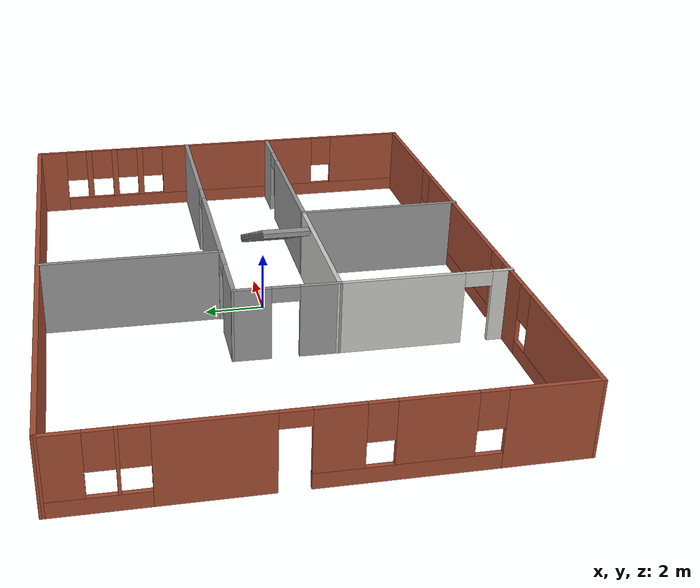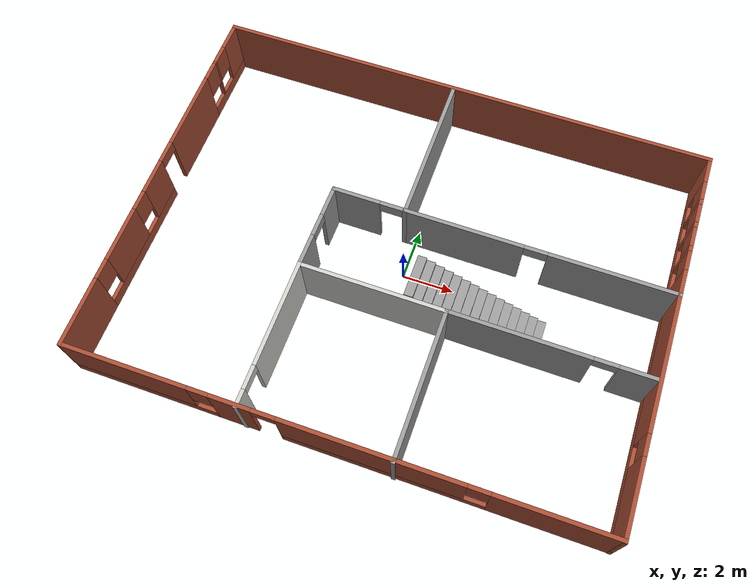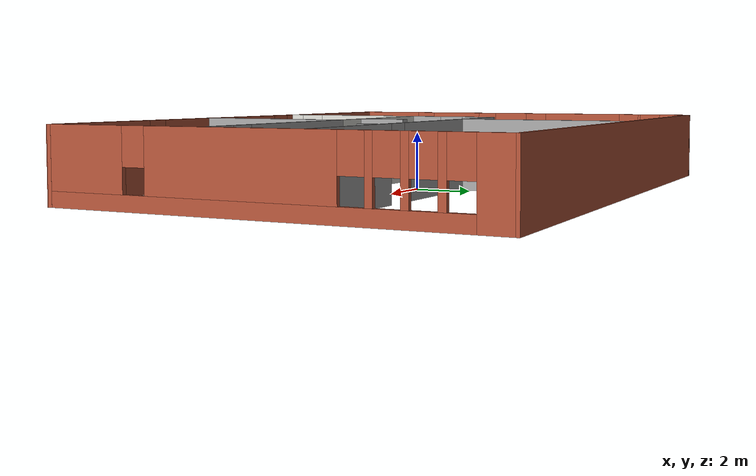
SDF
<?xml version='1.0'?>
<sdf version='1.6'>
  <model name='First_floor'>
    <pose frame=''>-0.06587 0.017672 0 0 -0 0</pose>
    <link name='Stairs_0'>
      <visual name='Stairs_0_Visual_0'>
        <pose frame=''>5.66584 -0.945565 0.083333 0 -0 -1.5708</pose>
        <geometry>
          <box>
            <size>1.64036 0.344635 0.166667</size>
          </box>
        </geometry>
        <material>
          <script>
            <uri>file://media/materials/scripts/gazebo.material</uri>
            <name>Gazebo/Grey</name>
          </script>
          <ambient>1 1 1 1</ambient>
        </material>
        <meta>
          <layer>0</layer>
        </meta>
      </visual>
      <collision name='Stairs_0_Collision_0'>
        <geometry>
          <box>
            <size>1.64036 0.344635 0.166667</size>
          </box>
        </geometry>
        <pose frame=''>5.66584 -0.945565 0.083333 0 -0 -1.5708</pose>
      </collision>
      <visual name='Stairs_0_Visual_1'>
        <pose frame=''>5.32121 -0.945565 0.25 0 -0 -1.5708</pose>
        <geometry>
          <box>
            <size>1.64036 0.344635 0.166667</size>
          </box>
        </geometry>
        <material>
          <script>
            <uri>file://media/materials/scripts/gazebo.material</uri>
            <name>Gazebo/Grey</name>
          </script>
          <ambient>1 1 1 1</ambient>
        </material>
        <meta>
          <layer>0</layer>
        </meta>
      </visual>
      <collision name='Stairs_0_Collision_1'>
        <geometry>
          <box>
            <size>1.64036 0.344635 0.166667</size>
          </box>
        </geometry>
        <pose frame=''>5.32121 -0.945565 0.25 0 -0 -1.5708</pose>
      </collision>
      <visual name='Stairs_0_Visual_2'>
        <pose frame=''>4.97658 -0.945565 0.416667 0 -0 -1.5708</pose>
        <geometry>
          <box>
            <size>1.64036 0.344635 0.166667</size>
          </box>
        </geometry>
        <material>
          <script>
            <uri>file://media/materials/scripts/gazebo.material</uri>
            <name>Gazebo/Grey</name>
          </script>
          <ambient>1 1 1 1</ambient>
        </material>
        <meta>
          <layer>0</layer>
        </meta>
      </visual>
      <collision name='Stairs_0_Collision_2'>
        <geometry>
          <box>
            <size>1.64036 0.344635 0.166667</size>
          </box>
        </geometry>
        <pose frame=''>4.97658 -0.945565 0.416667 0 -0 -1.5708</pose>
      </collision>
      <visual name='Stairs_0_Visual_3'>
        <pose frame=''>4.63194 -0.945565 0.583333 0 -0 -1.5708</pose>
        <geometry>
          <box>
            <size>1.64036 0.344635 0.166667</size>
          </box>
        </geometry>
        <material>
          <script>
            <uri>file://media/materials/scripts/gazebo.material</uri>
            <name>Gazebo/Grey</name>
          </script>
          <ambient>1 1 1 1</ambient>
        </material>
        <meta>
          <layer>0</layer>
        </meta>
      </visual>
      <collision name='Stairs_0_Collision_3'>
        <geometry>
          <box>
            <size>1.64036 0.344635 0.166667</size>
          </box>
        </geometry>
        <pose frame=''>4.63194 -0.945565 0.583333 0 -0 -1.5708</pose>
      </collision>
      <visual name='Stairs_0_Visual_4'>
        <pose frame=''>4.2873 -0.945564 0.75 0 -0 -1.5708</pose>
        <geometry>
          <box>
            <size>1.64036 0.344635 0.166667</size>
          </box>
        </geometry>
        <material>
          <script>
            <uri>file://media/materials/scripts/gazebo.material</uri>
            <name>Gazebo/Grey</name>
          </script>
          <ambient>1 1 1 1</ambient>
        </material>
        <meta>
          <layer>0</layer>
        </meta>
      </visual>
      <collision name='Stairs_0_Collision_4'>
        <geometry>
          <box>
            <size>1.64036 0.344635 0.166667</size>
          </box>
        </geometry>
        <pose frame=''>4.2873 -0.945564 0.75 0 -0 -1.5708</pose>
      </collision>
      <visual name='Stairs_0_Visual_5'>
        <pose frame=''>3.94267 -0.945564 0.916667 0 -0 -1.5708</pose>
        <geometry>
          <box>
            <size>1.64036 0.344635 0.166667</size>
          </box>
        </geometry>
        <material>
          <script>
            <uri>file://media/materials/scripts/gazebo.material</uri>
            <name>Gazebo/Grey</name>
          </script>
          <ambient>1 1 1 1</ambient>
        </material>
        <meta>
          <layer>0</layer>
        </meta>
      </visual>
      <collision name='Stairs_0_Collision_5'>
        <geometry>
          <box>
            <size>1.64036 0.344635 0.166667</size>
          </box>
        </geometry>
        <pose frame=''>3.94267 -0.945564 0.916667 0 -0 -1.5708</pose>
      </collision>
      <visual name='Stairs_0_Visual_6'>
        <pose frame=''>3.59804 -0.945564 1.08333 0 -0 -1.5708</pose>
        <geometry>
          <box>
            <size>1.64036 0.344635 0.166667</size>
          </box>
        </geometry>
        <material>
          <script>
            <uri>file://media/materials/scripts/gazebo.material</uri>
            <name>Gazebo/Grey</name>
          </script>
          <ambient>1 1 1 1</ambient>
        </material>
        <meta>
          <layer>0</layer>
        </meta>
      </visual>
      <collision name='Stairs_0_Collision_6'>
        <geometry>
          <box>
            <size>1.64036 0.344635 0.166667</size>
          </box>
        </geometry>
        <pose frame=''>3.59804 -0.945564 1.08333 0 -0 -1.5708</pose>
      </collision>
      <visual name='Stairs_0_Visual_7'>
        <pose frame=''>3.2534 -0.945564 1.25 0 -0 -1.5708</pose>
        <geometry>
          <box>
            <size>1.64036 0.344635 0.166667</size>
          </box>
        </geometry>
        <material>
          <script>
            <uri>file://media/materials/scripts/gazebo.material</uri>
            <name>Gazebo/Grey</name>
          </script>
          <ambient>1 1 1 1</ambient>
        </material>
        <meta>
          <layer>0</layer>
        </meta>
      </visual>
      <collision name='Stairs_0_Collision_7'>
        <geometry>
          <box>
            <size>1.64036 0.344635 0.166667</size>
          </box>
        </geometry>
        <pose frame=''>3.2534 -0.945564 1.25 0 -0 -1.5708</pose>
      </collision>
      <visual name='Stairs_0_Visual_8'>
        <pose frame=''>2.90877 -0.945564 1.41667 0 -0 -1.5708</pose>
        <geometry>
          <box>
            <size>1.64036 0.344635 0.166667</size>
          </box>
        </geometry>
        <material>
          <script>
            <uri>file://media/materials/scripts/gazebo.material</uri>
            <name>Gazebo/Grey</name>
          </script>
          <ambient>1 1 1 1</ambient>
        </material>
        <meta>
          <layer>0</layer>
        </meta>
      </visual>
      <collision name='Stairs_0_Collision_8'>
        <geometry>
          <box>
            <size>1.64036 0.344635 0.166667</size>
          </box>
        </geometry>
        <pose frame=''>2.90877 -0.945564 1.41667 0 -0 -1.5708</pose>
      </collision>
      <visual name='Stairs_0_Visual_9'>
        <pose frame=''>2.56413 -0.945564 1.58333 0 -0 -1.5708</pose>
        <geometry>
          <box>
            <size>1.64036 0.344635 0.166667</size>
          </box>
        </geometry>
        <material>
          <script>
            <uri>file://media/materials/scripts/gazebo.material</uri>
            <name>Gazebo/Grey</name>
          </script>
          <ambient>1 1 1 1</ambient>
        </material>
        <meta>
          <layer>0</layer>
        </meta>
      </visual>
      <collision name='Stairs_0_Collision_9'>
        <geometry>
          <box>
            <size>1.64036 0.344635 0.166667</size>
          </box>
        </geometry>
        <pose frame=''>2.56413 -0.945564 1.58333 0 -0 -1.5708</pose>
      </collision>
      <visual name='Stairs_0_Visual_10'>
        <pose frame=''>2.2195 -0.945564 1.75 0 -0 -1.5708</pose>
        <geometry>
          <box>
            <size>1.64036 0.344635 0.166667</size>
          </box>
        </geometry>
        <material>
          <script>
            <uri>file://media/materials/scripts/gazebo.material</uri>
            <name>Gazebo/Grey</name>
          </script>
          <ambient>1 1 1 1</ambient>
        </material>
        <meta>
          <layer>0</layer>
        </meta>
      </visual>
      <collision name='Stairs_0_Collision_10'>
        <geometry>
          <box>
            <size>1.64036 0.344635 0.166667</size>
          </box>
        </geometry>
        <pose frame=''>2.2195 -0.945564 1.75 0 -0 -1.5708</pose>
      </collision>
      <visual name='Stairs_0_Visual_11'>
        <pose frame=''>1.87486 -0.945564 1.91667 0 -0 -1.5708</pose>
        <geometry>
          <box>
            <size>1.64036 0.344635 0.166667</size>
          </box>
        </geometry>
        <material>
          <script>
            <uri>file://media/materials/scripts/gazebo.material</uri>
            <name>Gazebo/Grey</name>
          </script>
          <ambient>1 1 1 1</ambient>
        </material>
        <meta>
          <layer>0</layer>
        </meta>
      </visual>
      <collision name='Stairs_0_Collision_11'>
        <geometry>
          <box>
            <size>1.64036 0.344635 0.166667</size>
          </box>
        </geometry>
        <pose frame=''>1.87486 -0.945564 1.91667 0 -0 -1.5708</pose>
      </collision>
      <visual name='Stairs_0_Visual_12'>
        <pose frame=''>1.53023 -0.945564 2.08333 0 -0 -1.5708</pose>
        <geometry>
          <box>
            <size>1.64036 0.344635 0.166667</size>
          </box>
        </geometry>
        <material>
          <script>
            <uri>file://media/materials/scripts/gazebo.material</uri>
            <name>Gazebo/Grey</name>
          </script>
          <ambient>1 1 1 1</ambient>
        </material>
        <meta>
          <layer>0</layer>
        </meta>
      </visual>
      <collision name='Stairs_0_Collision_12'>
        <geometry>
          <box>
            <size>1.64036 0.344635 0.166667</size>
          </box>
        </geometry>
        <pose frame=''>1.53023 -0.945564 2.08333 0 -0 -1.5708</pose>
      </collision>
      <visual name='Stairs_0_Visual_13'>
        <pose frame=''>1.18559 -0.945564 2.25 0 -0 -1.5708</pose>
        <geometry>
          <box>
            <size>1.64036 0.344635 0.166667</size>
          </box>
        </geometry>
        <material>
          <script>
            <uri>file://media/materials/scripts/gazebo.material</uri>
            <name>Gazebo/Grey</name>
          </script>
          <ambient>1 1 1 1</ambient>
        </material>
        <meta>
          <layer>0</layer>
        </meta>
      </visual>
      <collision name='Stairs_0_Collision_13'>
        <geometry>
          <box>
            <size>1.64036 0.344635 0.166667</size>
          </box>
        </geometry>
        <pose frame=''>1.18559 -0.945564 2.25 0 -0 -1.5708</pose>
      </collision>
      <visual name='Stairs_0_Visual_14'>
        <pose frame=''>0.840959 -0.945564 2.41667 0 -0 -1.5708</pose>
        <geometry>
          <box>
            <size>1.64036 0.344635 0.166667</size>
          </box>
        </geometry>
        <material>
          <script>
            <uri>file://media/materials/scripts/gazebo.material</uri>
            <name>Gazebo/Grey</name>
          </script>
          <ambient>1 1 1 1</ambient>
        </material>
        <meta>
          <layer>0</layer>
        </meta>
      </visual>
      <collision name='Stairs_0_Collision_14'>
        <geometry>
          <box>
            <size>1.64036 0.344635 0.166667</size>
          </box>
        </geometry>
        <pose frame=''>0.840959 -0.945564 2.41667 0 -0 -1.5708</pose>
      </collision>
    </link>
    <link name='Wall_0'>
      <collision name='Wall_0_Collision'>
        <geometry>
          <box>
            <size>20.0866 0.15 2.5</size>
          </box>
        </geometry>
        <pose frame=''>0 0 1.25 0 -0 0</pose>
      </collision>
      <visual name='Wall_0_Visual'>
        <pose frame=''>0 0 1.25 0 -0 0</pose>
        <geometry>
          <box>
            <size>20.0866 0.15 2.5</size>
          </box>
        </geometry>
        <material>
          <script>
            <uri>file://media/materials/scripts/gazebo.material</uri>
            <name>Gazebo/Bricks</name>
          </script>
          <ambient>1 1 1 1</ambient>
        </material>
        <meta>
          <layer>0</layer>
        </meta>
      </visual>
      <pose frame=''>-0.034458 7.43331 0 0 -0 0.003011</pose>
    </link>
    <link name='Wall_1'>
      <pose frame=''>9.96823 0.021047 0 0 0 -1.56616</pose>
      <visual name='Wall_1_Visual_0'>
        <pose frame=''>-6.94799 0 1.25 0 -0 0</pose>
        <geometry>
          <box>
            <size>1.10416 0.15 2.5</size>
          </box>
        </geometry>
        <material>
          <script>
            <uri>file://media/materials/scripts/gazebo.material</uri>
            <name>Gazebo/Bricks</name>
          </script>
          <ambient>1 1 1 1</ambient>
        </material>
        <meta>
          <layer>0</layer>
        </meta>
      </visual>
      <collision name='Wall_1_Collision_0'>
        <geometry>
          <box>
            <size>1.10416 0.15 2.5</size>
          </box>
        </geometry>
        <pose frame=''>-6.94799 0 1.25 0 -0 0</pose>
      </collision>
      <visual name='Wall_1_Visual_1'>
        <pose frame=''>0.55208 0 0.25 0 -0 0</pose>
        <geometry>
          <box>
            <size>13.896 0.15 0.5</size>
          </box>
        </geometry>
        <material>
          <script>
            <uri>file://media/materials/scripts/gazebo.material</uri>
            <name>Gazebo/Bricks</name>
          </script>
          <ambient>1 1 1 1</ambient>
        </material>
        <meta>
          <layer>0</layer>
        </meta>
      </visual>
      <collision name='Wall_1_Collision_1'>
        <geometry>
          <box>
            <size>13.896 0.15 0.5</size>
          </box>
        </geometry>
        <pose frame=''>0.55208 0 0.25 0 -0 0</pose>
      </collision>
      <visual name='Wall_1_Visual_2'>
        <pose frame=''>-5.47984 0 1.5 0 -0 0</pose>
        <geometry>
          <box>
            <size>0.232133 0.15 2</size>
          </box>
        </geometry>
        <material>
          <script>
            <uri>file://media/materials/scripts/gazebo.material</uri>
            <name>Gazebo/Bricks</name>
          </script>
          <ambient>1 1 1 1</ambient>
        </material>
        <meta>
          <layer>0</layer>
        </meta>
      </visual>
      <collision name='Wall_1_Collision_2'>
        <geometry>
          <box>
            <size>0.232133 0.15 2</size>
          </box>
        </geometry>
        <pose frame=''>-5.47984 0 1.5 0 -0 0</pose>
      </collision>
      <visual name='Wall_1_Visual_3'>
        <pose frame=''>-4.44797 0 1.5 0 -0 0</pose>
        <geometry>
          <box>
            <size>0.231613 0.15 2</size>
          </box>
        </geometry>
        <material>
          <script>
            <uri>file://media/materials/scripts/gazebo.material</uri>
            <name>Gazebo/Bricks</name>
          </script>
          <ambient>1 1 1 1</ambient>
        </material>
        <meta>
          <layer>0</layer>
        </meta>
      </visual>
      <collision name='Wall_1_Collision_3'>
        <geometry>
          <box>
            <size>0.231613 0.15 2</size>
          </box>
        </geometry>
        <pose frame=''>-4.44797 0 1.5 0 -0 0</pose>
      </collision>
      <visual name='Wall_1_Visual_4'>
        <pose frame=''>-3.4163 0 1.5 0 -0 0</pose>
        <geometry>
          <box>
            <size>0.231716 0.15 2</size>
          </box>
        </geometry>
        <material>
          <script>
            <uri>file://media/materials/scripts/gazebo.material</uri>
            <name>Gazebo/Bricks</name>
          </script>
          <ambient>1 1 1 1</ambient>
        </material>
        <meta>
          <layer>0</layer>
        </meta>
      </visual>
      <collision name='Wall_1_Collision_4'>
        <geometry>
          <box>
            <size>0.231716 0.15 2</size>
          </box>
        </geometry>
        <pose frame=''>-3.4163 0 1.5 0 -0 0</pose>
      </collision>
      <visual name='Wall_1_Visual_5'>
        <pose frame=''>0.654855 0 1.5 0 -0 0</pose>
        <geometry>
          <box>
            <size>6.3106 0.15 2</size>
          </box>
        </geometry>
        <material>
          <script>
            <uri>file://media/materials/scripts/gazebo.material</uri>
            <name>Gazebo/Bricks</name>
          </script>
          <ambient>1 1 1 1</ambient>
        </material>
        <meta>
          <layer>0</layer>
        </meta>
      </visual>
      <collision name='Wall_1_Collision_5'>
        <geometry>
          <box>
            <size>6.3106 0.15 2</size>
          </box>
        </geometry>
        <pose frame=''>0.654855 0 1.5 0 -0 0</pose>
      </collision>
      <visual name='Wall_1_Visual_6'>
        <pose frame=''>6.05511 0 1.5 0 -0 0</pose>
        <geometry>
          <box>
            <size>2.88991 0.15 2</size>
          </box>
        </geometry>
        <material>
          <script>
            <uri>file://media/materials/scripts/gazebo.material</uri>
            <name>Gazebo/Bricks</name>
          </script>
          <ambient>1 1 1 1</ambient>
        </material>
        <meta>
          <layer>0</layer>
        </meta>
      </visual>
      <collision name='Wall_1_Collision_6'>
        <geometry>
          <box>
            <size>2.88991 0.15 2</size>
          </box>
        </geometry>
        <pose frame=''>6.05511 0 1.5 0 -0 0</pose>
      </collision>
      <visual name='Wall_1_Visual_7'>
        <pose frame=''>-5.99591 0 1.9 0 -0 0</pose>
        <geometry>
          <box>
            <size>0.8 0.15 1.2</size>
          </box>
        </geometry>
        <material>
          <script>
            <uri>file://media/materials/scripts/gazebo.material</uri>
            <name>Gazebo/Bricks</name>
          </script>
          <ambient>1 1 1 1</ambient>
        </material>
        <meta>
          <layer>0</layer>
        </meta>
      </visual>
      <collision name='Wall_1_Collision_7'>
        <geometry>
          <box>
            <size>0.8 0.15 1.2</size>
          </box>
        </geometry>
        <pose frame=''>-5.99591 0 1.9 0 -0 0</pose>
      </collision>
      <visual name='Wall_1_Visual_8'>
        <pose frame=''>-4.96377 0 1.9 0 -0 0</pose>
        <geometry>
          <box>
            <size>0.8 0.15 1.2</size>
          </box>
        </geometry>
        <material>
          <script>
            <uri>file://media/materials/scripts/gazebo.material</uri>
            <name>Gazebo/Bricks</name>
          </script>
          <ambient>1 1 1 1</ambient>
        </material>
        <meta>
          <layer>0</layer>
        </meta>
      </visual>
      <collision name='Wall_1_Collision_8'>
        <geometry>
          <box>
            <size>0.8 0.15 1.2</size>
          </box>
        </geometry>
        <pose frame=''>-4.96377 0 1.9 0 -0 0</pose>
      </collision>
      <visual name='Wall_1_Visual_9'>
        <pose frame=''>-3.93216 0 1.9 0 -0 0</pose>
        <geometry>
          <box>
            <size>0.8 0.15 1.2</size>
          </box>
        </geometry>
        <material>
          <script>
            <uri>file://media/materials/scripts/gazebo.material</uri>
            <name>Gazebo/Bricks</name>
          </script>
          <ambient>1 1 1 1</ambient>
        </material>
        <meta>
          <layer>0</layer>
        </meta>
      </visual>
      <collision name='Wall_1_Collision_9'>
        <geometry>
          <box>
            <size>0.8 0.15 1.2</size>
          </box>
        </geometry>
        <pose frame=''>-3.93216 0 1.9 0 -0 0</pose>
      </collision>
      <visual name='Wall_1_Visual_10'>
        <pose frame=''>-2.90044 0 1.9 0 -0 0</pose>
        <geometry>
          <box>
            <size>0.8 0.15 1.2</size>
          </box>
        </geometry>
        <material>
          <script>
            <uri>file://media/materials/scripts/gazebo.material</uri>
            <name>Gazebo/Bricks</name>
          </script>
          <ambient>1 1 1 1</ambient>
        </material>
        <meta>
          <layer>0</layer>
        </meta>
      </visual>
      <collision name='Wall_1_Collision_10'>
        <geometry>
          <box>
            <size>0.8 0.15 1.2</size>
          </box>
        </geometry>
        <pose frame=''>-2.90044 0 1.9 0 -0 0</pose>
      </collision>
      <visual name='Wall_1_Visual_11'>
        <pose frame=''>4.21016 0 1.9 0 -0 0</pose>
        <geometry>
          <box>
            <size>0.8 0.15 1.2</size>
          </box>
        </geometry>
        <material>
          <script>
            <uri>file://media/materials/scripts/gazebo.material</uri>
            <name>Gazebo/Bricks</name>
          </script>
          <ambient>1 1 1 1</ambient>
        </material>
        <meta>
          <layer>0</layer>
        </meta>
      </visual>
      <collision name='Wall_1_Collision_11'>
        <geometry>
          <box>
            <size>0.8 0.15 1.2</size>
          </box>
        </geometry>
        <pose frame=''>4.21016 0 1.9 0 -0 0</pose>
      </collision>
    </link>
    <link name='Wall_11'>
      <collision name='Wall_11_Collision'>
        <geometry>
          <box>
            <size>6 0.15 2.5</size>
          </box>
        </geometry>
        <pose frame=''>0 0 1.25 0 -0 0</pose>
      </collision>
      <visual name='Wall_11_Visual'>
        <pose frame=''>0 0 1.25 0 -0 0</pose>
        <geometry>
          <box>
            <size>6 0.15 2.5</size>
          </box>
        </geometry>
        <material>
          <script>
            <uri>file://media/materials/scripts/gazebo.material</uri>
            <name>Gazebo/Grey</name>
          </script>
          <ambient>1 1 1 1</ambient>
        </material>
        <meta>
          <layer>0</layer>
        </meta>
      </visual>
      <pose frame=''>-0.394257 4.40838 0 0 0 -1.57075</pose>
    </link>
    <link name='Wall_12'>
      <pose frame=''>4.78074 1.48338 0 0 -0 9e-06</pose>
      <visual name='Wall_12_Visual_0'>
        <pose frame=''>-2.91164 0 1.25 0 -0 0</pose>
        <geometry>
          <box>
            <size>4.67672 0.15 2.5</size>
          </box>
        </geometry>
        <material>
          <script>
            <uri>file://media/materials/scripts/gazebo.material</uri>
            <name>Gazebo/Grey</name>
          </script>
          <ambient>1 1 1 1</ambient>
        </material>
        <meta>
          <layer>0</layer>
        </meta>
      </visual>
      <collision name='Wall_12_Collision_0'>
        <geometry>
          <box>
            <size>4.67672 0.15 2.5</size>
          </box>
        </geometry>
        <pose frame=''>-2.91164 0 1.25 0 -0 0</pose>
      </collision>
      <visual name='Wall_12_Visual_1'>
        <pose frame=''>2.78836 0 1.25 0 -0 0</pose>
        <geometry>
          <box>
            <size>4.92328 0.15 2.5</size>
          </box>
        </geometry>
        <material>
          <script>
            <uri>file://media/materials/scripts/gazebo.material</uri>
            <name>Gazebo/Grey</name>
          </script>
          <ambient>1 1 1 1</ambient>
        </material>
        <meta>
          <layer>0</layer>
        </meta>
      </visual>
      <collision name='Wall_12_Collision_1'>
        <geometry>
          <box>
            <size>4.92328 0.15 2.5</size>
          </box>
        </geometry>
        <pose frame=''>2.78836 0 1.25 0 -0 0</pose>
      </collision>
      <visual name='Wall_12_Visual_2'>
        <pose frame=''>-0.123283 0 2.25 0 -0 0</pose>
        <geometry>
          <box>
            <size>0.9 0.15 0.5</size>
          </box>
        </geometry>
        <material>
          <script>
            <uri>file://media/materials/scripts/gazebo.material</uri>
            <name>Gazebo/Grey</name>
          </script>
          <ambient>1 1 1 1</ambient>
        </material>
        <meta>
          <layer>0</layer>
        </meta>
      </visual>
      <collision name='Wall_12_Collision_2'>
        <geometry>
          <box>
            <size>0.9 0.15 0.5</size>
          </box>
        </geometry>
        <pose frame=''>-0.123283 0 2.25 0 -0 0</pose>
      </collision>
    </link>
    <link name='Wall_14'>
      <pose frame=''>-1.81913 1.48333 0 0 -0 3.14159</pose>
      <visual name='Wall_14_Visual_0'>
        <pose frame=''>-1.41529 0 1.25 0 -0 0</pose>
        <geometry>
          <box>
            <size>0.16941 0.15 2.5</size>
          </box>
        </geometry>
        <material>
          <script>
            <uri>file://media/materials/scripts/gazebo.material</uri>
            <name>Gazebo/Grey</name>
          </script>
          <ambient>1 1 1 1</ambient>
        </material>
        <meta>
          <layer>0</layer>
        </meta>
      </visual>
      <collision name='Wall_14_Collision_0'>
        <geometry>
          <box>
            <size>0.16941 0.15 2.5</size>
          </box>
        </geometry>
        <pose frame=''>-1.41529 0 1.25 0 -0 0</pose>
      </collision>
      <visual name='Wall_14_Visual_1'>
        <pose frame=''>0.534705 0 1.25 0 -0 0</pose>
        <geometry>
          <box>
            <size>1.93059 0.15 2.5</size>
          </box>
        </geometry>
        <material>
          <script>
            <uri>file://media/materials/scripts/gazebo.material</uri>
            <name>Gazebo/Grey</name>
          </script>
          <ambient>1 1 1 1</ambient>
        </material>
        <meta>
          <layer>0</layer>
        </meta>
      </visual>
      <collision name='Wall_14_Collision_1'>
        <geometry>
          <box>
            <size>1.93059 0.15 2.5</size>
          </box>
        </geometry>
        <pose frame=''>0.534705 0 1.25 0 -0 0</pose>
      </collision>
      <visual name='Wall_14_Visual_2'>
        <pose frame=''>-0.88059 0 2.25 0 -0 0</pose>
        <geometry>
          <box>
            <size>0.9 0.15 0.5</size>
          </box>
        </geometry>
        <material>
          <script>
            <uri>file://media/materials/scripts/gazebo.material</uri>
            <name>Gazebo/Grey</name>
          </script>
          <ambient>1 1 1 1</ambient>
        </material>
        <meta>
          <layer>0</layer>
        </meta>
      </visual>
      <collision name='Wall_14_Collision_2'>
        <geometry>
          <box>
            <size>0.9 0.15 0.5</size>
          </box>
        </geometry>
        <pose frame=''>-0.88059 0 2.25 0 -0 0</pose>
      </collision>
    </link>
    <link name='Wall_15'>
      <pose frame=''>-3.26556 -0.190112 0 0 0 -1.5836</pose>
      <visual name='Wall_15_Visual_0'>
        <pose frame=''>-1.11592 0 1.25 0 -0 0</pose>
        <geometry>
          <box>
            <size>1.26541 0.15 2.5</size>
          </box>
        </geometry>
        <material>
          <script>
            <uri>file://media/materials/scripts/gazebo.material</uri>
            <name>Gazebo/Grey</name>
          </script>
          <ambient>1 1 1 1</ambient>
        </material>
        <meta>
          <layer>0</layer>
        </meta>
      </visual>
      <collision name='Wall_15_Collision_0'>
        <geometry>
          <box>
            <size>1.26541 0.15 2.5</size>
          </box>
        </geometry>
        <pose frame=''>-1.11592 0 1.25 0 -0 0</pose>
      </collision>
      <visual name='Wall_15_Visual_1'>
        <pose frame=''>1.0827 0 1.25 0 -0 0</pose>
        <geometry>
          <box>
            <size>1.33184 0.15 2.5</size>
          </box>
        </geometry>
        <material>
          <script>
            <uri>file://media/materials/scripts/gazebo.material</uri>
            <name>Gazebo/Grey</name>
          </script>
          <ambient>1 1 1 1</ambient>
        </material>
        <meta>
          <layer>0</layer>
        </meta>
      </visual>
      <collision name='Wall_15_Collision_1'>
        <geometry>
          <box>
            <size>1.33184 0.15 2.5</size>
          </box>
        </geometry>
        <pose frame=''>1.0827 0 1.25 0 -0 0</pose>
      </collision>
      <visual name='Wall_15_Visual_2'>
        <pose frame=''>-0.033215 0 2.25 0 -0 0</pose>
        <geometry>
          <box>
            <size>0.9 0.15 0.5</size>
          </box>
        </geometry>
        <material>
          <script>
            <uri>file://media/materials/scripts/gazebo.material</uri>
            <name>Gazebo/Grey</name>
          </script>
          <ambient>1 1 1 1</ambient>
        </material>
        <meta>
          <layer>0</layer>
        </meta>
      </visual>
      <collision name='Wall_15_Collision_2'>
        <geometry>
          <box>
            <size>0.9 0.15 0.5</size>
          </box>
        </geometry>
        <pose frame=''>-0.033215 0 2.25 0 -0 0</pose>
      </collision>
    </link>
    <link name='Wall_2'>
      <pose frame=''>0.034457 -7.41666 0 0 0 -3.13858</pose>
      <visual name='Wall_2_Visual_0'>
        <pose frame=''>-7.81814 0 1.25 0 -0 0</pose>
        <geometry>
          <box>
            <size>4.45027 0.15 2.5</size>
          </box>
        </geometry>
        <material>
          <script>
            <uri>file://media/materials/scripts/gazebo.material</uri>
            <name>Gazebo/Bricks</name>
          </script>
          <ambient>1 1 1 1</ambient>
        </material>
        <meta>
          <layer>0</layer>
        </meta>
      </visual>
      <collision name='Wall_2_Collision_0'>
        <geometry>
          <box>
            <size>4.45027 0.15 2.5</size>
          </box>
        </geometry>
        <pose frame=''>-7.81814 0 1.25 0 -0 0</pose>
      </collision>
      <visual name='Wall_2_Visual_1'>
        <pose frame=''>3.59029 0 1.25 0 -0 0</pose>
        <geometry>
          <box>
            <size>1.54988 0.15 2.5</size>
          </box>
        </geometry>
        <material>
          <script>
            <uri>file://media/materials/scripts/gazebo.material</uri>
            <name>Gazebo/Bricks</name>
          </script>
          <ambient>1 1 1 1</ambient>
        </material>
        <meta>
          <layer>0</layer>
        </meta>
      </visual>
      <collision name='Wall_2_Collision_1'>
        <geometry>
          <box>
            <size>1.54988 0.15 2.5</size>
          </box>
        </geometry>
        <pose frame=''>3.59029 0 1.25 0 -0 0</pose>
      </collision>
      <visual name='Wall_2_Visual_2'>
        <pose frame=''>-1.83883 0 0.25 0 -0 0</pose>
        <geometry>
          <box>
            <size>7.50836 0.15 0.5</size>
          </box>
        </geometry>
        <material>
          <script>
            <uri>file://media/materials/scripts/gazebo.material</uri>
            <name>Gazebo/Bricks</name>
          </script>
          <ambient>1 1 1 1</ambient>
        </material>
        <meta>
          <layer>0</layer>
        </meta>
      </visual>
      <collision name='Wall_2_Collision_2'>
        <geometry>
          <box>
            <size>7.50836 0.15 0.5</size>
          </box>
        </geometry>
        <pose frame=''>-1.83883 0 0.25 0 -0 0</pose>
      </collision>
      <visual name='Wall_2_Visual_3'>
        <pose frame=''>7.20425 0 0.25 0 -0 0</pose>
        <geometry>
          <box>
            <size>5.67805 0.15 0.5</size>
          </box>
        </geometry>
        <material>
          <script>
            <uri>file://media/materials/scripts/gazebo.material</uri>
            <name>Gazebo/Bricks</name>
          </script>
          <ambient>1 1 1 1</ambient>
        </material>
        <meta>
          <layer>0</layer>
        </meta>
      </visual>
      <collision name='Wall_2_Collision_3'>
        <geometry>
          <box>
            <size>5.67805 0.15 0.5</size>
          </box>
        </geometry>
        <pose frame=''>7.20425 0 0.25 0 -0 0</pose>
      </collision>
      <visual name='Wall_2_Visual_4'>
        <pose frame=''>-1.43883 0 1.5 0 -0 0</pose>
        <geometry>
          <box>
            <size>6.70836 0.15 2</size>
          </box>
        </geometry>
        <material>
          <script>
            <uri>file://media/materials/scripts/gazebo.material</uri>
            <name>Gazebo/Bricks</name>
          </script>
          <ambient>1 1 1 1</ambient>
        </material>
        <meta>
          <layer>0</layer>
        </meta>
      </visual>
      <collision name='Wall_2_Collision_4'>
        <geometry>
          <box>
            <size>6.70836 0.15 2</size>
          </box>
        </geometry>
        <pose frame=''>-1.43883 0 1.5 0 -0 0</pose>
      </collision>
      <visual name='Wall_2_Visual_5'>
        <pose frame=''>-1.43883 0 1.5 0 -0 0</pose>
        <geometry>
          <box>
            <size>6.70836 0.15 2</size>
          </box>
        </geometry>
        <material>
          <script>
            <uri>file://media/materials/scripts/gazebo.material</uri>
            <name>Gazebo/Bricks</name>
          </script>
          <ambient>1 1 1 1</ambient>
        </material>
        <meta>
          <layer>0</layer>
        </meta>
      </visual>
      <collision name='Wall_2_Collision_5'>
        <geometry>
          <box>
            <size>6.70836 0.15 2</size>
          </box>
        </geometry>
        <pose frame=''>-1.43883 0 1.5 0 -0 0</pose>
      </collision>
      <visual name='Wall_2_Visual_6'>
        <pose frame=''>7.60425 0 1.5 0 -0 0</pose>
        <geometry>
          <box>
            <size>4.87805 0.15 2</size>
          </box>
        </geometry>
        <material>
          <script>
            <uri>file://media/materials/scripts/gazebo.material</uri>
            <name>Gazebo/Bricks</name>
          </script>
          <ambient>1 1 1 1</ambient>
        </material>
        <meta>
          <layer>0</layer>
        </meta>
      </visual>
      <collision name='Wall_2_Collision_6'>
        <geometry>
          <box>
            <size>4.87805 0.15 2</size>
          </box>
        </geometry>
        <pose frame=''>7.60425 0 1.5 0 -0 0</pose>
      </collision>
      <visual name='Wall_2_Visual_7'>
        <pose frame=''>-5.19301 0 1.9 0 -0 0</pose>
        <geometry>
          <box>
            <size>0.8 0.15 1.2</size>
          </box>
        </geometry>
        <material>
          <script>
            <uri>file://media/materials/scripts/gazebo.material</uri>
            <name>Gazebo/Bricks</name>
          </script>
          <ambient>1 1 1 1</ambient>
        </material>
        <meta>
          <layer>0</layer>
        </meta>
      </visual>
      <collision name='Wall_2_Collision_7'>
        <geometry>
          <box>
            <size>0.8 0.15 1.2</size>
          </box>
        </geometry>
        <pose frame=''>-5.19301 0 1.9 0 -0 0</pose>
      </collision>
      <visual name='Wall_2_Visual_8'>
        <pose frame=''>4.76523 0 1.9 0 -0 0</pose>
        <geometry>
          <box>
            <size>0.8 0.15 1.2</size>
          </box>
        </geometry>
        <material>
          <script>
            <uri>file://media/materials/scripts/gazebo.material</uri>
            <name>Gazebo/Bricks</name>
          </script>
          <ambient>1 1 1 1</ambient>
        </material>
        <meta>
          <layer>0</layer>
        </meta>
      </visual>
      <collision name='Wall_2_Collision_8'>
        <geometry>
          <box>
            <size>0.8 0.15 1.2</size>
          </box>
        </geometry>
        <pose frame=''>4.76523 0 1.9 0 -0 0</pose>
      </collision>
      <visual name='Wall_2_Visual_9'>
        <pose frame=''>2.36535 0 2.25 0 -0 0</pose>
        <geometry>
          <box>
            <size>0.9 0.15 0.5</size>
          </box>
        </geometry>
        <material>
          <script>
            <uri>file://media/materials/scripts/gazebo.material</uri>
            <name>Gazebo/Bricks</name>
          </script>
          <ambient>1 1 1 1</ambient>
        </material>
        <meta>
          <layer>0</layer>
        </meta>
      </visual>
      <collision name='Wall_2_Collision_9'>
        <geometry>
          <box>
            <size>0.9 0.15 0.5</size>
          </box>
        </geometry>
        <pose frame=''>2.36535 0 2.25 0 -0 0</pose>
      </collision>
      <visual name='Wall_2_Visual_10'>
        <pose frame=''>2.36535 0 2.25 0 -0 0</pose>
        <geometry>
          <box>
            <size>0.9 0.15 0.5</size>
          </box>
        </geometry>
        <material>
          <script>
            <uri>file://media/materials/scripts/gazebo.material</uri>
            <name>Gazebo/Bricks</name>
          </script>
          <ambient>1 1 1 1</ambient>
        </material>
        <meta>
          <layer>0</layer>
        </meta>
      </visual>
      <collision name='Wall_2_Collision_10'>
        <geometry>
          <box>
            <size>0.9 0.15 0.5</size>
          </box>
        </geometry>
        <pose frame=''>2.36535 0 2.25 0 -0 0</pose>
      </collision>
    </link>
    <link name='Wall_3'>
      <pose frame=''>-9.96823 -0.021696 0 0 -0 1.57544</pose>
      <visual name='Wall_3_Visual_0'>
        <pose frame=''>-6.14574 0 1.25 0 -0 0</pose>
        <geometry>
          <box>
            <size>2.70852 0.15 2.5</size>
          </box>
        </geometry>
        <material>
          <script>
            <uri>file://media/materials/scripts/gazebo.material</uri>
            <name>Gazebo/Bricks</name>
          </script>
          <ambient>1 1 1 1</ambient>
        </material>
        <meta>
          <layer>0</layer>
        </meta>
      </visual>
      <collision name='Wall_3_Collision_0'>
        <geometry>
          <box>
            <size>2.70852 0.15 2.5</size>
          </box>
        </geometry>
        <pose frame=''>-6.14574 0 1.25 0 -0 0</pose>
      </collision>
      <visual name='Wall_3_Visual_1'>
        <pose frame=''>2.96542 0 1.25 0 -0 0</pose>
        <geometry>
          <box>
            <size>3.23862 0.15 2.5</size>
          </box>
        </geometry>
        <material>
          <script>
            <uri>file://media/materials/scripts/gazebo.material</uri>
            <name>Gazebo/Bricks</name>
          </script>
          <ambient>1 1 1 1</ambient>
        </material>
        <meta>
          <layer>0</layer>
        </meta>
      </visual>
      <collision name='Wall_3_Collision_1'>
        <geometry>
          <box>
            <size>3.23862 0.15 2.5</size>
          </box>
        </geometry>
        <pose frame=''>2.96542 0 1.25 0 -0 0</pose>
      </collision>
      <visual name='Wall_3_Visual_2'>
        <pose frame=''>-2.17268 0 0.25 0 -0 0</pose>
        <geometry>
          <box>
            <size>5.23759 0.15 0.5</size>
          </box>
        </geometry>
        <material>
          <script>
            <uri>file://media/materials/scripts/gazebo.material</uri>
            <name>Gazebo/Bricks</name>
          </script>
          <ambient>1 1 1 1</ambient>
        </material>
        <meta>
          <layer>0</layer>
        </meta>
      </visual>
      <collision name='Wall_3_Collision_2'>
        <geometry>
          <box>
            <size>5.23759 0.15 0.5</size>
          </box>
        </geometry>
        <pose frame=''>-2.17268 0 0.25 0 -0 0</pose>
      </collision>
      <visual name='Wall_3_Visual_3'>
        <pose frame=''>6.04236 0 0.25 0 -0 0</pose>
        <geometry>
          <box>
            <size>2.91527 0.15 0.5</size>
          </box>
        </geometry>
        <material>
          <script>
            <uri>file://media/materials/scripts/gazebo.material</uri>
            <name>Gazebo/Bricks</name>
          </script>
          <ambient>1 1 1 1</ambient>
        </material>
        <meta>
          <layer>0</layer>
        </meta>
      </visual>
      <collision name='Wall_3_Collision_3'>
        <geometry>
          <box>
            <size>2.91527 0.15 0.5</size>
          </box>
        </geometry>
        <pose frame=''>6.04236 0 0.25 0 -0 0</pose>
      </collision>
      <visual name='Wall_3_Visual_4'>
        <pose frame=''>-2.88907 0 1.5 0 -0 0</pose>
        <geometry>
          <box>
            <size>2.20481 0.15 2</size>
          </box>
        </geometry>
        <material>
          <script>
            <uri>file://media/materials/scripts/gazebo.material</uri>
            <name>Gazebo/Bricks</name>
          </script>
          <ambient>1 1 1 1</ambient>
        </material>
        <meta>
          <layer>0</layer>
        </meta>
      </visual>
      <collision name='Wall_3_Collision_4'>
        <geometry>
          <box>
            <size>2.20481 0.15 2</size>
          </box>
        </geometry>
        <pose frame=''>-2.88907 0 1.5 0 -0 0</pose>
      </collision>
      <visual name='Wall_3_Visual_5'>
        <pose frame=''>-0.27028 0 1.5 0 -0 0</pose>
        <geometry>
          <box>
            <size>1.43277 0.15 2</size>
          </box>
        </geometry>
        <material>
          <script>
            <uri>file://media/materials/scripts/gazebo.material</uri>
            <name>Gazebo/Bricks</name>
          </script>
          <ambient>1 1 1 1</ambient>
        </material>
        <meta>
          <layer>0</layer>
        </meta>
      </visual>
      <collision name='Wall_3_Collision_5'>
        <geometry>
          <box>
            <size>1.43277 0.15 2</size>
          </box>
        </geometry>
        <pose frame=''>-0.27028 0 1.5 0 -0 0</pose>
      </collision>
      <visual name='Wall_3_Visual_6'>
        <pose frame=''>-0.27028 0 1.5 0 -0 0</pose>
        <geometry>
          <box>
            <size>1.43277 0.15 2</size>
          </box>
        </geometry>
        <material>
          <script>
            <uri>file://media/materials/scripts/gazebo.material</uri>
            <name>Gazebo/Bricks</name>
          </script>
          <ambient>1 1 1 1</ambient>
        </material>
        <meta>
          <layer>0</layer>
        </meta>
      </visual>
      <collision name='Wall_3_Collision_6'>
        <geometry>
          <box>
            <size>1.43277 0.15 2</size>
          </box>
        </geometry>
        <pose frame=''>-0.27028 0 1.5 0 -0 0</pose>
      </collision>
      <visual name='Wall_3_Visual_7'>
        <pose frame=''>5.43293 0 1.5 0 -0 0</pose>
        <geometry>
          <box>
            <size>0.096416 0.15 2</size>
          </box>
        </geometry>
        <material>
          <script>
            <uri>file://media/materials/scripts/gazebo.material</uri>
            <name>Gazebo/Bricks</name>
          </script>
          <ambient>1 1 1 1</ambient>
        </material>
        <meta>
          <layer>0</layer>
        </meta>
      </visual>
      <collision name='Wall_3_Collision_7'>
        <geometry>
          <box>
            <size>0.096416 0.15 2</size>
          </box>
        </geometry>
        <pose frame=''>5.43293 0 1.5 0 -0 0</pose>
      </collision>
      <visual name='Wall_3_Visual_8'>
        <pose frame=''>6.89057 0 1.5 0 -0 0</pose>
        <geometry>
          <box>
            <size>1.21886 0.15 2</size>
          </box>
        </geometry>
        <material>
          <script>
            <uri>file://media/materials/scripts/gazebo.material</uri>
            <name>Gazebo/Bricks</name>
          </script>
          <ambient>1 1 1 1</ambient>
        </material>
        <meta>
          <layer>0</layer>
        </meta>
      </visual>
      <collision name='Wall_3_Collision_8'>
        <geometry>
          <box>
            <size>1.21886 0.15 2</size>
          </box>
        </geometry>
        <pose frame=''>6.89057 0 1.5 0 -0 0</pose>
      </collision>
      <visual name='Wall_3_Visual_9'>
        <pose frame=''>-4.39148 0 1.9 0 -0 0</pose>
        <geometry>
          <box>
            <size>0.8 0.15 1.2</size>
          </box>
        </geometry>
        <material>
          <script>
            <uri>file://media/materials/scripts/gazebo.material</uri>
            <name>Gazebo/Bricks</name>
          </script>
          <ambient>1 1 1 1</ambient>
        </material>
        <meta>
          <layer>0</layer>
        </meta>
      </visual>
      <collision name='Wall_3_Collision_9'>
        <geometry>
          <box>
            <size>0.8 0.15 1.2</size>
          </box>
        </geometry>
        <pose frame=''>-4.39148 0 1.9 0 -0 0</pose>
      </collision>
      <visual name='Wall_3_Visual_10'>
        <pose frame=''>4.98473 0 1.9 0 -0 0</pose>
        <geometry>
          <box>
            <size>0.8 0.15 1.2</size>
          </box>
        </geometry>
        <material>
          <script>
            <uri>file://media/materials/scripts/gazebo.material</uri>
            <name>Gazebo/Bricks</name>
          </script>
          <ambient>1 1 1 1</ambient>
        </material>
        <meta>
          <layer>0</layer>
        </meta>
      </visual>
      <collision name='Wall_3_Collision_10'>
        <geometry>
          <box>
            <size>0.8 0.15 1.2</size>
          </box>
        </geometry>
        <pose frame=''>4.98473 0 1.9 0 -0 0</pose>
      </collision>
      <visual name='Wall_3_Visual_11'>
        <pose frame=''>-1.38667 0 1.9 0 -0 0</pose>
        <geometry>
          <box>
            <size>0.8 0.15 1.2</size>
          </box>
        </geometry>
        <material>
          <script>
            <uri>file://media/materials/scripts/gazebo.material</uri>
            <name>Gazebo/Bricks</name>
          </script>
          <ambient>1 1 1 1</ambient>
        </material>
        <meta>
          <layer>0</layer>
        </meta>
      </visual>
      <collision name='Wall_3_Collision_11'>
        <geometry>
          <box>
            <size>0.8 0.15 1.2</size>
          </box>
        </geometry>
        <pose frame=''>-1.38667 0 1.9 0 -0 0</pose>
      </collision>
      <visual name='Wall_3_Visual_12'>
        <pose frame=''>5.88114 0 1.9 0 -0 0</pose>
        <geometry>
          <box>
            <size>0.8 0.15 1.2</size>
          </box>
        </geometry>
        <material>
          <script>
            <uri>file://media/materials/scripts/gazebo.material</uri>
            <name>Gazebo/Bricks</name>
          </script>
          <ambient>1 1 1 1</ambient>
        </material>
        <meta>
          <layer>0</layer>
        </meta>
      </visual>
      <collision name='Wall_3_Collision_12'>
        <geometry>
          <box>
            <size>0.8 0.15 1.2</size>
          </box>
        </geometry>
        <pose frame=''>5.88114 0 1.9 0 -0 0</pose>
      </collision>
      <visual name='Wall_3_Visual_13'>
        <pose frame=''>0.896108 0 2.25 0 -0 0</pose>
        <geometry>
          <box>
            <size>0.9 0.15 0.5</size>
          </box>
        </geometry>
        <material>
          <script>
            <uri>file://media/materials/scripts/gazebo.material</uri>
            <name>Gazebo/Bricks</name>
          </script>
          <ambient>1 1 1 1</ambient>
        </material>
        <meta>
          <layer>0</layer>
        </meta>
      </visual>
      <collision name='Wall_3_Collision_13'>
        <geometry>
          <box>
            <size>0.9 0.15 0.5</size>
          </box>
        </geometry>
        <pose frame=''>0.896108 0 2.25 0 -0 0</pose>
      </collision>
      <visual name='Wall_3_Visual_14'>
        <pose frame=''>0.896108 0 2.25 0 -0 0</pose>
        <geometry>
          <box>
            <size>0.9 0.15 0.5</size>
          </box>
        </geometry>
        <material>
          <script>
            <uri>file://media/materials/scripts/gazebo.material</uri>
            <name>Gazebo/Bricks</name>
          </script>
          <ambient>1 1 1 1</ambient>
        </material>
        <meta>
          <layer>0</layer>
        </meta>
      </visual>
      <collision name='Wall_3_Collision_14'>
        <geometry>
          <box>
            <size>0.9 0.15 0.5</size>
          </box>
        </geometry>
        <pose frame=''>0.896108 0 2.25 0 -0 0</pose>
      </collision>
    </link>
    <link name='Wall_5'>
      <collision name='Wall_5_Collision'>
        <geometry>
          <box>
            <size>5.75 0.15 2.5</size>
          </box>
        </geometry>
        <pose frame=''>0 0 1.25 0 -0 0</pose>
      </collision>
      <visual name='Wall_5_Visual'>
        <pose frame=''>0 0 1.25 0 -0 0</pose>
        <geometry>
          <box>
            <size>5.75 0.15 2.5</size>
          </box>
        </geometry>
        <material>
          <script>
            <uri>file://media/materials/scripts/gazebo.material</uri>
            <name>Gazebo/Grey</name>
          </script>
          <ambient>1 1 1 1</ambient>
        </material>
        <meta>
          <layer>0</layer>
        </meta>
      </visual>
      <pose frame=''>2.31302 -4.66355 0 0 -0 1.5708</pose>
    </link>
    <link name='Wall_6'>
      <pose frame=''>6.11302 -1.86355 0 0 -0 0</pose>
      <visual name='Wall_6_Visual_0'>
        <pose frame=''>-1.1809 0 1.25 0 -0 0</pose>
        <geometry>
          <box>
            <size>5.38821 0.15 2.5</size>
          </box>
        </geometry>
        <material>
          <script>
            <uri>file://media/materials/scripts/gazebo.material</uri>
            <name>Gazebo/Grey</name>
          </script>
          <ambient>1 1 1 1</ambient>
        </material>
        <meta>
          <layer>0</layer>
        </meta>
      </visual>
      <collision name='Wall_6_Collision_0'>
        <geometry>
          <box>
            <size>5.38821 0.15 2.5</size>
          </box>
        </geometry>
        <pose frame=''>-1.1809 0 1.25 0 -0 0</pose>
      </collision>
      <visual name='Wall_6_Visual_1'>
        <pose frame=''>3.1441 0 1.25 0 -0 0</pose>
        <geometry>
          <box>
            <size>1.46179 0.15 2.5</size>
          </box>
        </geometry>
        <material>
          <script>
            <uri>file://media/materials/scripts/gazebo.material</uri>
            <name>Gazebo/Grey</name>
          </script>
          <ambient>1 1 1 1</ambient>
        </material>
        <meta>
          <layer>0</layer>
        </meta>
      </visual>
      <collision name='Wall_6_Collision_1'>
        <geometry>
          <box>
            <size>1.46179 0.15 2.5</size>
          </box>
        </geometry>
        <pose frame=''>3.1441 0 1.25 0 -0 0</pose>
      </collision>
      <visual name='Wall_6_Visual_2'>
        <pose frame=''>1.96321 0 2.25 0 -0 0</pose>
        <geometry>
          <box>
            <size>0.9 0.15 0.5</size>
          </box>
        </geometry>
        <material>
          <script>
            <uri>file://media/materials/scripts/gazebo.material</uri>
            <name>Gazebo/Grey</name>
          </script>
          <ambient>1 1 1 1</ambient>
        </material>
        <meta>
          <layer>0</layer>
        </meta>
      </visual>
      <collision name='Wall_6_Collision_2'>
        <geometry>
          <box>
            <size>0.9 0.15 0.5</size>
          </box>
        </geometry>
        <pose frame=''>1.96321 0 2.25 0 -0 0</pose>
      </collision>
    </link>
    <link name='Wall_8'>
      <collision name='Wall_8_Collision'>
        <geometry>
          <box>
            <size>5.75 0.15 2.5</size>
          </box>
        </geometry>
        <pose frame=''>0 0 1.25 0 -0 0</pose>
      </collision>
      <visual name='Wall_8_Visual'>
        <pose frame=''>0 0 1.25 0 -0 0</pose>
        <geometry>
          <box>
            <size>5.75 0.15 2.5</size>
          </box>
        </geometry>
        <material>
          <script>
            <uri>file://media/materials/scripts/gazebo.material</uri>
            <name>Gazebo/CeilingTiled</name>
          </script>
          <ambient>1 1 1 1</ambient>
        </material>
        <meta>
          <layer>0</layer>
        </meta>
      </visual>
      <pose frame=''>-0.486982 -1.86355 0 0 -0 3.14159</pose>
    </link>
    <link name='Wall_9'>
      <pose frame=''>-3.28698 -4.66355 0 0 0 -1.5708</pose>
      <visual name='Wall_9_Visual_0'>
        <pose frame=''>-0.801082 0 1.25 0 -0 0</pose>
        <geometry>
          <box>
            <size>4.14783 0.15 2.5</size>
          </box>
        </geometry>
        <material>
          <script>
            <uri>file://media/materials/scripts/gazebo.material</uri>
            <name>Gazebo/CeilingTiled</name>
          </script>
          <ambient>1 1 1 1</ambient>
        </material>
        <meta>
          <layer>0</layer>
        </meta>
      </visual>
      <collision name='Wall_9_Collision_0'>
        <geometry>
          <box>
            <size>4.14783 0.15 2.5</size>
          </box>
        </geometry>
        <pose frame=''>-0.801082 0 1.25 0 -0 0</pose>
      </collision>
      <visual name='Wall_9_Visual_1'>
        <pose frame=''>2.52392 0 1.25 0 -0 0</pose>
        <geometry>
          <box>
            <size>0.702165 0.15 2.5</size>
          </box>
        </geometry>
        <material>
          <script>
            <uri>file://media/materials/scripts/gazebo.material</uri>
            <name>Gazebo/CeilingTiled</name>
          </script>
          <ambient>1 1 1 1</ambient>
        </material>
        <meta>
          <layer>0</layer>
        </meta>
      </visual>
      <collision name='Wall_9_Collision_1'>
        <geometry>
          <box>
            <size>0.702165 0.15 2.5</size>
          </box>
        </geometry>
        <pose frame=''>2.52392 0 1.25 0 -0 0</pose>
      </collision>
      <visual name='Wall_9_Visual_2'>
        <pose frame=''>1.72283 0 2.25 0 -0 0</pose>
        <geometry>
          <box>
            <size>0.9 0.15 0.5</size>
          </box>
        </geometry>
        <material>
          <script>
            <uri>file://media/materials/scripts/gazebo.material</uri>
            <name>Gazebo/CeilingTiled</name>
          </script>
          <ambient>1 1 1 1</ambient>
        </material>
        <meta>
          <layer>0</layer>
        </meta>
      </visual>
      <collision name='Wall_9_Collision_2'>
        <geometry>
          <box>
            <size>0.9 0.15 0.5</size>
          </box>
        </geometry>
        <pose frame=''>1.72283 0 2.25 0 -0 0</pose>
      </collision>
    </link>
    <static>1</static>
  </model>
</sdf>
